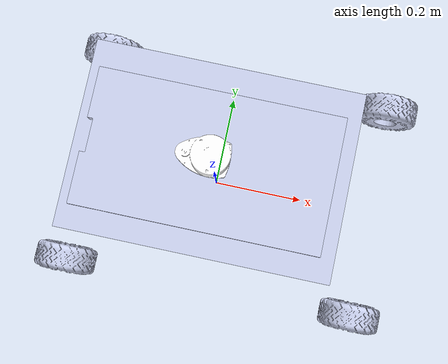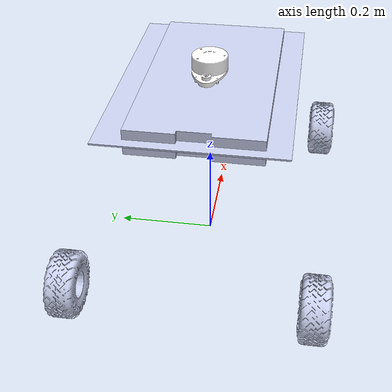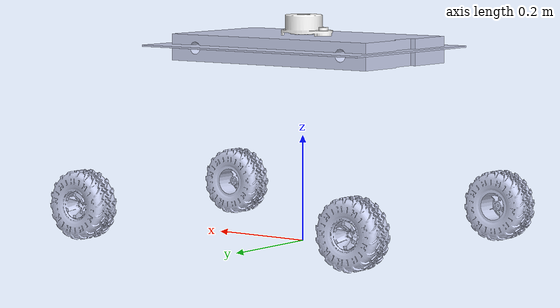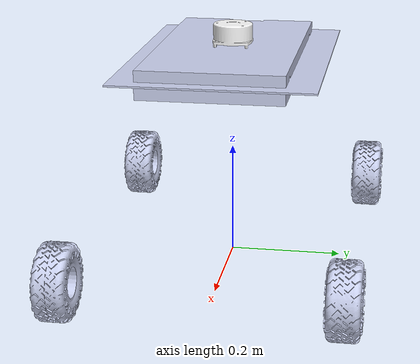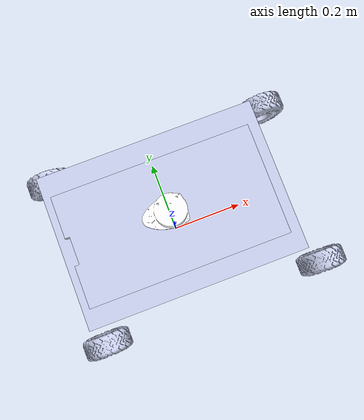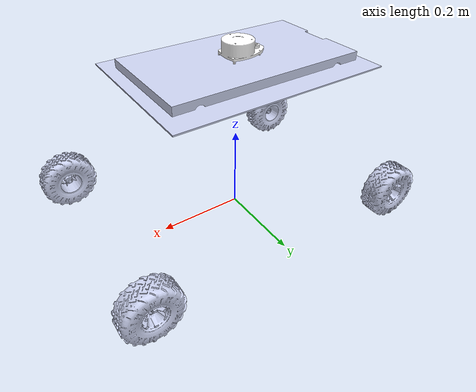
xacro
<?xml version="1.0"?>
<robot name="bot3"
    xmlns:xacro="http://www.ros.org.wiki/xacro">

    <xacro:arg name="is_ignition" default="true"/>
    <xacro:arg name="is_sim" default="true"/>

    <xacro:include filename = "$(find descriptions_package)/urdf/bot3_ext_info.xacro"/>
    <xacro:include filename = "$(find descriptions_package)/urdf/bot3_control.xacro"/>

    <link name="base_footprint" />

    <link name="base_link">
        <inertial>
            <origin xyz="0.030383 -4.727E-05 -0.22722" rpy="0 0 0" />
            <mass value="2.9248" />
            <inertia ixx="0.098824" ixy="4.2644E-05" ixz="0.00018005" iyy="0.18173" iyz="-5.5361E-06" izz="0.21491" />
        </inertial>
        <visual>
            <origin xyz="0 0 0" rpy="0 0 0" />
            <geometry>
                <mesh filename="package://descriptions_package/meshes/base_link.STL" />
            </geometry>
            <material name="">
                <color rgba="0.79216 0.81961 0.93333 1" />
            </material>
        </visual>
        <collision>
            <origin xyz="0 0 0" rpy="0 0 0" />
            <geometry>
                <mesh filename="package://descriptions_package/meshes/base_link.STL" />
            </geometry>
        </collision>
    </link>

    <joint name="base_joint" type="fixed">
        <origin xyz="0 0 0.3670" rpy="0 0 0" />
        <parent link="base_footprint" />
        <child link="base_link" />

    </joint>

    <link name="front_left_wheel_link">
        <inertial>
            <origin xyz="3.5922E-07 0.010504 6.7014E-07" rpy="0 0 0" />
            <mass value="0.12758" />
            <inertia ixx="0.00021109" ixy="-3.2632E-10" ixz="2.7231E-10" iyy="0.00033045" iyz="-7.7919E-10" izz="0.00021109" />
        </inertial>
        <visual>
            <origin xyz="0 0 0" rpy="0 0 0" />
            <geometry>
                <mesh filename="package://descriptions_package/meshes/front_left_wheel_link.STL" />
            </geometry>
            <material name="">
                <color rgba="0.79216 0.81961 0.93333 1" />
            </material>
        </visual>
        <collision>
            <origin xyz="0 0 0" rpy="0 0 0" />
            <geometry>
                <mesh filename="package://descriptions_package/meshes/front_left_wheel_link.STL" />
            </geometry>
        </collision>
    </link>
    <joint name="front_left_wheel_joint" type="continuous">
        <origin xyz="0.34753 0.22161 -0.30152" rpy="0 0 0" />
        <parent link="base_link" />
        <child link="front_left_wheel_link" />
        <axis xyz="0 1 0" />
    </joint>
    <link name="front_right_wheel_link">
        <inertial>
            <origin xyz="2.3229E-07 -0.010504 7.234E-07" rpy="0 0 0" />
            <mass value="0.12758" />
            <inertia ixx="0.00021109" ixy="3.4532E-10" ixz="3.3275E-10" iyy="0.00033045" iyz="7.6097E-10" izz="0.00021109" />
        </inertial>
        <visual>
            <origin xyz="0 0 0" rpy="0 0 0" />
            <geometry>
                <mesh filename="package://descriptions_package/meshes/front_right_wheel_link.STL" />
            </geometry>
            <material name="">
                <color rgba="0.79216 0.81961 0.93333 1" />
            </material>
        </visual>
        <collision>
            <origin xyz="0 0 0" rpy="0 0 0" />
            <geometry>
                <mesh filename="package://descriptions_package/meshes/front_right_wheel_link.STL" />
            </geometry>
        </collision>
    </link>
    <joint name="front_right_wheel_joint" type="continuous">
        <origin xyz="0.34753 -0.22341 -0.30152" rpy="0 0 0" />
        <parent link="base_link" />
        <child link="front_right_wheel_link" />
        <axis xyz="0 1 0" />
    </joint>
    <link name="rear_left_wheel_link">
        <inertial>
            <origin xyz="-7.56215798314308E-07 0.0105035826487469 7.64141164510956E-08" rpy="0 0 0" />
            <mass value="0.127580085395877" />
            <inertia ixx="0.000211087485723571" ixy="8.30499338431993E-10" ixz="3.60302607726152E-11" iyy="0.000330454424504559" iyz="5.6828474567577E-14" izz="0.000211086643232728" />
        </inertial>
        <visual>
            <origin xyz="0 0 0" rpy="0 0 0" />
            <geometry>
                <mesh filename="package://descriptions_package/meshes/rear_left_wheel_link.STL" />
            </geometry>
            <material name="">
                <color rgba="0.792156862745098 0.819607843137255 0.933333333333333 1" />
            </material>
        </visual>
        <collision>
            <origin xyz="0 0 0" rpy="0 0 0" />
            <geometry>
                <mesh filename="package://descriptions_package/meshes/rear_left_wheel_link.STL" />
            </geometry>
        </collision>
    </link>
    <joint name="rear_left_wheel_joint" type="continuous">
        <origin xyz="-0.28747 0.22581 -0.30152" rpy="0 0 0" />
        <parent link="base_link" />
        <child link="rear_left_wheel_link" />
        <axis xyz="0 1 0" />
    </joint>
    <link name="rear_right_wheel_link">
        <inertial>
            <origin xyz="7.5622E-07 -0.010504 7.6414E-08" rpy="0 0 0" />
            <mass value="0.12758" />
            <inertia ixx="0.00021109" ixy="8.305E-10" ixz="-3.603E-11" iyy="0.00033045" iyz="-5.6831E-14" izz="0.00021109" />
        </inertial>
        <visual>
            <origin xyz="0 0 0" rpy="0 0 0" />
            <geometry>
                <mesh filename="package://descriptions_package/meshes/rear_right_wheel_link.STL" />
            </geometry>
            <material name="">
                <color rgba="0.79216 0.81961 0.93333 1" />
            </material>
        </visual>
        <collision>
            <origin xyz="0 0 0" rpy="0 0 0" />
            <geometry>
                <mesh filename="package://descriptions_package/meshes/rear_right_wheel_link.STL" />
            </geometry>
        </collision>
    </link>
    <joint name="rear_right_wheel_joint" type="continuous">
        <origin xyz="-0.28747 -0.22758 -0.30152" rpy="0 0 0" />
        <parent link="base_link" />
        <child link="rear_right_wheel_link" />
        <axis xyz="0 1 0" />
    </joint>
    <link name="lidar_plate">
        <inertial>
            <origin xyz="5.5511E-17 -2.7756E-17 0.0015" rpy="0 0 0" />
            <mass value="0.51954" />
            <inertia ixx="0.0052303" ixy="3.1598E-19" ixz="3.1685E-18" iyy="0.01075" iyz="4.5715E-19" izz="0.015979" />
        </inertial>
        <visual>
            <origin xyz="0 0 0" rpy="0 0 0" />
            <geometry>
                <mesh filename="package://descriptions_package/meshes/lidar_plate.STL" />
            </geometry>
            <material name="">
                <color rgba="0.79216 0.81961 0.93333 1" />
            </material>
        </visual>
        <collision>
            <origin xyz="0 0 0" rpy="0 0 0" />
            <geometry>
                <mesh filename="package://descriptions_package/meshes/lidar_plate.STL" />
            </geometry>
        </collision>
    </link>
    <joint name="lidar_plate_joint" type="fixed">
        <origin xyz="-0.0022811 0 0" rpy="0 0 0" />
        <parent link="base_link" />
        <child link="lidar_plate" />
        <axis xyz="0 0 0" />
    </joint>
    <link name=" laser_frame">
        <inertial>
            <origin xyz="0 0 0" rpy="0 0 0" />
            <mass value="0" />
            <inertia ixx="0" ixy="0" ixz="0" iyy="0" iyz="0" izz="0" />
        </inertial>
        <visual>
            <origin xyz="0 0 0" rpy="0 0 0" />
            <geometry>
                <mesh filename="package://descriptions_package/meshes/ laser_frame.STL" />
            </geometry>
            <material name="">
                <color rgba="1 1 1 1" />
            </material>
        </visual>
        <collision>
            <origin xyz="0 0 0" rpy="0 0 0" />
            <geometry>
                <mesh filename="package://descriptions_package/meshes/ laser_frame.STL" />
            </geometry>
        </collision>
    </link>
    <joint name="lidar_sensor_joint" type="fixed">
        <origin xyz="-0.0022811 0 0.04565" rpy="0 0 0" />
        <parent link="base_link" />
        <child link=" laser_frame" />
        <axis xyz="0 0 0" />
    </joint>

</robot>
